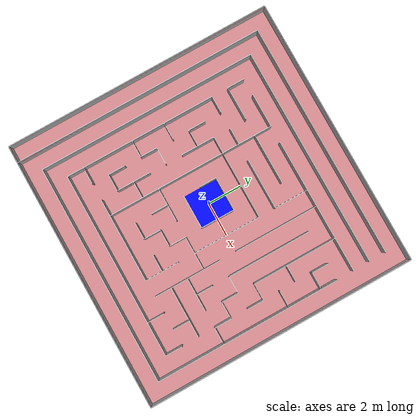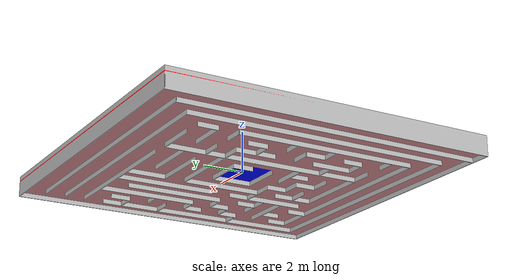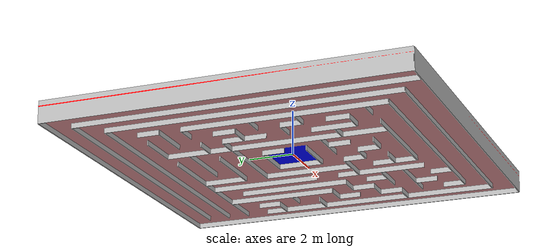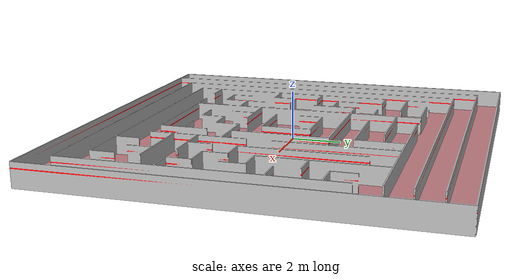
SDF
<?xml version="1.0" ?>
<sdf version="1.5">
  <model name="maze1">
    <static>true</static>
    <pose>0 0 0 0 0 0</pose>
    <link name="walls">
      <collision name="collision">
        <geometry>
          <mesh>
            <uri>model://maze1/meshes/maze1.dae</uri>
            <scale>0.5 0.5 0.5</scale>
          </mesh>
        </geometry>
      </collision>

      <visual name="visual">
        <geometry>
          <mesh>
            <uri>model://maze1/meshes/maze1.dae</uri>
            <scale>0.5 0.5 0.5</scale>
          </mesh>
        </geometry>
        <cast_shadows>false</cast_shadows>
      </visual>
    </link>
  </model>
</sdf>
